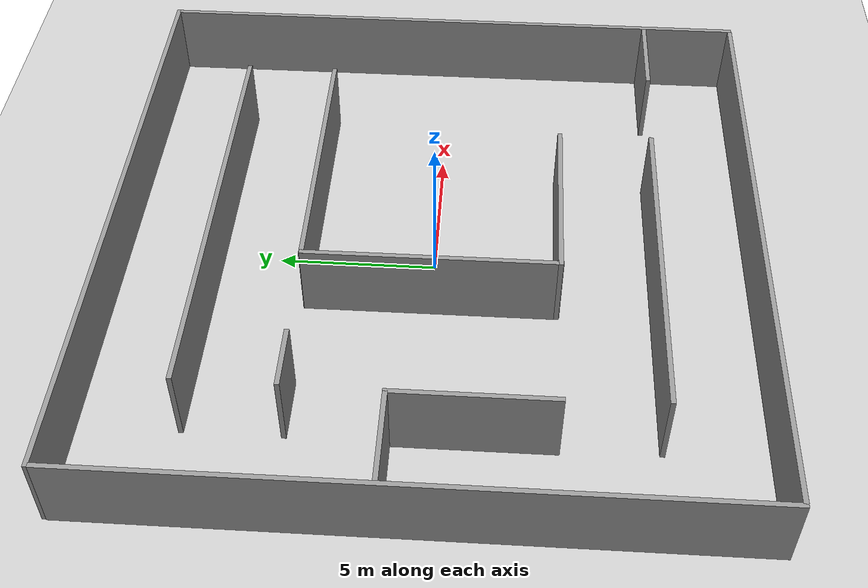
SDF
<sdf version="1.4">
 <world name="default">
  <scene><shadows>0</shadows></scene>
  <include><uri>model://sun</uri></include>
  <include><uri>model://ground_plane</uri></include>
  <include><uri>model://sun</uri></include>
  <include><uri>model://maze</uri></include>
 </world>
</sdf>

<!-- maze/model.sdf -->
<sdf version='1.6'>
  <model name='maze'>
    <pose frame=''>0.011501 -0.001351 0 0 -0 0</pose>
    <link name='Wall_0'>
      <collision name='Wall_0_Collision'>
        <geometry>
          <box>
            <size>20 0.15 2.5</size>
          </box>
        </geometry>
        <pose frame=''>0 0 1.25 0 -0 0</pose>
      </collision>
      <visual name='Wall_0_Visual'>
        <pose frame=''>0 0 1.25 0 -0 0</pose>
        <geometry>
          <box>
            <size>20 0.15 2.5</size>
          </box>
        </geometry>
        <material>
          <script>
            <uri>file://media/materials/scripts/gazebo.material</uri>
            <name>Gazebo/Grey</name>
          </script>
          <ambient>1 1 1 1</ambient>
        </material>
        <meta>
          <layer>0</layer>
        </meta>
      </visual>
      <pose frame=''>-0.014462 -10.0669 0 0 -0 3.14159</pose>
    </link>
    <link name='Wall_10'>
      <collision name='Wall_10_Collision'>
        <geometry>
          <box>
            <size>11 0.15 2.5</size>
          </box>
        </geometry>
        <pose frame=''>0 0 1.25 0 -0 0</pose>
      </collision>
      <visual name='Wall_10_Visual'>
        <pose frame=''>0 0 1.25 0 -0 0</pose>
        <geometry>
          <box>
            <size>11 0.15 2.5</size>
          </box>
        </geometry>
        <material>
          <script>
            <uri>file://media/materials/scripts/gazebo.material</uri>
            <name>Gazebo/Grey</name>
          </script>
          <ambient>1 1 1 1</ambient>
        </material>
        <meta>
          <layer>0</layer>
        </meta>
      </visual>
      <pose frame=''>-1.52454 -6.918 0 0 -0 3.14159</pose>
    </link>
    <link name='Wall_17'>
      <collision name='Wall_17_Collision'>
        <geometry>
          <box>
            <size>6 0.15 2.5</size>
          </box>
        </geometry>
        <pose frame=''>0 0 1.25 0 -0 0</pose>
      </collision>
      <visual name='Wall_17_Visual'>
        <pose frame=''>0 0 1.25 0 -0 0</pose>
        <geometry>
          <box>
            <size>6 0.15 2.5</size>
          </box>
        </geometry>
        <material>
          <script>
            <uri>file://media/materials/scripts/gazebo.material</uri>
            <name>Gazebo/Grey</name>
          </script>
          <ambient>1 1 1 1</ambient>
        </material>
        <meta>
          <layer>0</layer>
        </meta>
      </visual>
      <pose frame=''>0.988499 -3.91361 0 0 -0 3.14159</pose>
    </link>
    <link name='Wall_18'>
      <collision name='Wall_18_Collision'>
        <geometry>
          <box>
            <size>8 0.15 2.5</size>
          </box>
        </geometry>
        <pose frame=''>0 0 1.25 0 -0 0</pose>
      </collision>
      <visual name='Wall_18_Visual'>
        <pose frame=''>0 0 1.25 0 -0 0</pose>
        <geometry>
          <box>
            <size>8 0.15 2.5</size>
          </box>
        </geometry>
        <material>
          <script>
            <uri>file://media/materials/scripts/gazebo.material</uri>
            <name>Gazebo/Grey</name>
          </script>
          <ambient>1 1 1 1</ambient>
        </material>
        <meta>
          <layer>0</layer>
        </meta>
      </visual>
      <pose frame=''>-1.9365 -0.003814 0 0 -0 1.5708</pose>
    </link>
    <link name='Wall_19'>
      <collision name='Wall_19_Collision'>
        <geometry>
          <box>
            <size>9 0.15 2.5</size>
          </box>
        </geometry>
        <pose frame=''>0 0 1.25 0 -0 0</pose>
      </collision>
      <visual name='Wall_19_Visual'>
        <pose frame=''>0 0 1.25 0 -0 0</pose>
        <geometry>
          <box>
            <size>9 0.15 2.5</size>
          </box>
        </geometry>
        <material>
          <script>
            <uri>file://media/materials/scripts/gazebo.material</uri>
            <name>Gazebo/Grey</name>
          </script>
          <ambient>1 1 1 1</ambient>
        </material>
        <meta>
          <layer>0</layer>
        </meta>
      </visual>
      <pose frame=''>2.4885 3.9364 0 0 -0 0</pose>
    </link>
    <link name='Wall_2'>
      <collision name='Wall_2_Collision'>
        <geometry>
          <box>
            <size>20.15 0.15 2.5</size>
          </box>
        </geometry>
        <pose frame=''>0 0 1.25 0 -0 0</pose>
      </collision>
      <visual name='Wall_2_Visual'>
        <pose frame=''>0 0 1.25 0 -0 0</pose>
        <geometry>
          <box>
            <size>20.15 0.15 2.5</size>
          </box>
        </geometry>
        <material>
          <script>
            <uri>file://media/materials/scripts/gazebo.material</uri>
            <name>Gazebo/Grey</name>
          </script>
          <ambient>1 1 1 1</ambient>
        </material>
        <meta>
          <layer>0</layer>
        </meta>
      </visual>
      <pose frame=''>10.0545 -0.052649 0 0 -0 1.5708</pose>
    </link>
    <link name='Wall_23'>
      <collision name='Wall_23_Collision'>
        <geometry>
          <box>
            <size>2 0.15 2.5</size>
          </box>
        </geometry>
        <pose frame=''>0 0 1.25 0 -0 0</pose>
      </collision>
      <visual name='Wall_23_Visual'>
        <pose frame=''>0 0 1.25 0 -0 0</pose>
        <geometry>
          <box>
            <size>2 0.15 2.5</size>
          </box>
        </geometry>
        <material>
          <script>
            <uri>file://media/materials/scripts/gazebo.material</uri>
            <name>Gazebo/Grey</name>
          </script>
          <ambient>1 1 1 1</ambient>
        </material>
        <meta>
          <layer>0</layer>
        </meta>
      </visual>
      <pose frame=''>-6.03032 3.92393 0 0 -0 0</pose>
    </link>
    <link name='Wall_25'>
      <collision name='Wall_25_Collision'>
        <geometry>
          <box>
            <size>14 0.15 2.5</size>
          </box>
        </geometry>
        <pose frame=''>0 0 1.25 0 -0 0</pose>
      </collision>
      <visual name='Wall_25_Visual'>
        <pose frame=''>0 0 1.25 0 -0 0</pose>
        <geometry>
          <box>
            <size>14 0.15 2.5</size>
          </box>
        </geometry>
        <material>
          <script>
            <uri>file://media/materials/scripts/gazebo.material</uri>
            <name>Gazebo/Grey</name>
          </script>
          <ambient>1 1 1 1</ambient>
        </material>
        <meta>
          <layer>0</layer>
        </meta>
      </visual>
      <pose frame=''>-0.012851 6.92348 0 0 -0 3.14159</pose>
    </link>
    <link name='Wall_27'>
      <collision name='Wall_27_Collision'>
        <geometry>
          <box>
            <size>3 0.15 2.5</size>
          </box>
        </geometry>
        <pose frame=''>0 0 1.25 0 -0 0</pose>
      </collision>
      <visual name='Wall_27_Visual'>
        <pose frame=''>0 0 1.25 0 -0 0</pose>
        <geometry>
          <box>
            <size>3 0.15 2.5</size>
          </box>
        </geometry>
        <material>
          <script>
            <uri>file://media/materials/scripts/gazebo.material</uri>
            <name>Gazebo/Grey</name>
          </script>
          <ambient>1 1 1 1</ambient>
        </material>
        <meta>
          <layer>0</layer>
        </meta>
      </visual>
      <pose frame=''>-8.48355 0.931344 0 0 -0 0</pose>
    </link>
    <link name='Wall_28'>
      <collision name='Wall_28_Collision'>
        <geometry>
          <box>
            <size>5 0.15 2.5</size>
          </box>
        </geometry>
        <pose frame=''>0 0 1.25 0 -0 0</pose>
      </collision>
      <visual name='Wall_28_Visual'>
        <pose frame=''>0 0 1.25 0 -0 0</pose>
        <geometry>
          <box>
            <size>5 0.15 2.5</size>
          </box>
        </geometry>
        <material>
          <script>
            <uri>file://media/materials/scripts/gazebo.material</uri>
            <name>Gazebo/Grey</name>
          </script>
          <ambient>1 1 1 1</ambient>
        </material>
        <meta>
          <layer>0</layer>
        </meta>
      </visual>
      <pose frame=''>-7.05854 -1.49366 0 0 -0 -1.5708</pose>
    </link>
    <link name='Wall_4'>
      <collision name='Wall_4_Collision'>
        <geometry>
          <box>
            <size>20.25 0.15 2.5</size>
          </box>
        </geometry>
        <pose frame=''>0 0 1.25 0 -0 0</pose>
      </collision>
      <visual name='Wall_4_Visual'>
        <pose frame=''>0 0 1.25 0 -0 0</pose>
        <geometry>
          <box>
            <size>20.25 0.15 2.5</size>
          </box>
        </geometry>
        <material>
          <script>
            <uri>file://media/materials/scripts/gazebo.material</uri>
            <name>Gazebo/Grey</name>
          </script>
          <ambient>1 1 1 1</ambient>
        </material>
        <meta>
          <layer>0</layer>
        </meta>
      </visual>
      <pose frame=''>0.008162 10.0669 0 0 -0 3.14159</pose>
    </link>
    <link name='Wall_6'>
      <collision name='Wall_6_Collision'>
        <geometry>
          <box>
            <size>20.15 0.15 2.5</size>
          </box>
        </geometry>
        <pose frame=''>0 0 1.25 0 -0 0</pose>
      </collision>
      <visual name='Wall_6_Visual'>
        <pose frame=''>0 0 1.25 0 -0 0</pose>
        <geometry>
          <box>
            <size>20.15 0.15 2.5</size>
          </box>
        </geometry>
        <material>
          <script>
            <uri>file://media/materials/scripts/gazebo.material</uri>
            <name>Gazebo/Grey</name>
          </script>
          <ambient>1 1 1 1</ambient>
        </material>
        <meta>
          <layer>0</layer>
        </meta>
      </visual>
      <pose frame=''>-10.0582 -0.057077 0 0 -0 1.5708</pose>
    </link>
    <link name='Wall_8'>
      <collision name='Wall_8_Collision'>
        <geometry>
          <box>
            <size>3 0.15 2.5</size>
          </box>
        </geometry>
        <pose frame=''>0 0 1.25 0 -0 0</pose>
      </collision>
      <visual name='Wall_8_Visual'>
        <pose frame=''>0 0 1.25 0 -0 0</pose>
        <geometry>
          <box>
            <size>3 0.15 2.5</size>
          </box>
        </geometry>
        <material>
          <script>
            <uri>file://media/materials/scripts/gazebo.material</uri>
            <name>Gazebo/Grey</name>
          </script>
          <ambient>1 1 1 1</ambient>
        </material>
        <meta>
          <layer>0</layer>
        </meta>
      </visual>
      <pose frame=''>8.48239 -6.98371 0 0 -0 3.14159</pose>
    </link>
    <static>1</static>
  </model>
</sdf>
